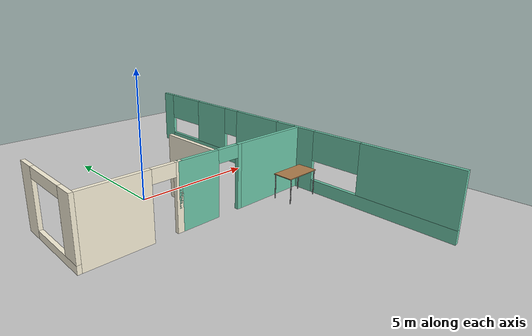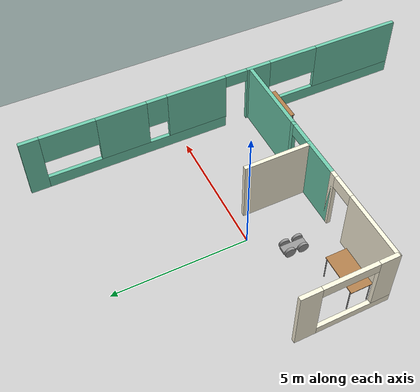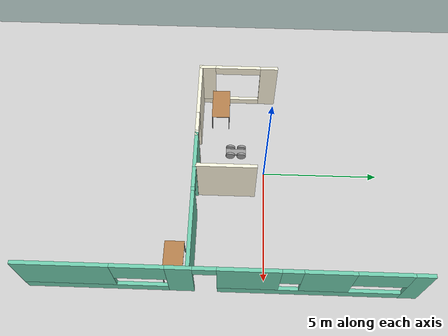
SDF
<sdf version="1.6">
 <world name="default">
  <model name="ground_plane">
   <static>1</static>
   <link name="link">
    <collision name="collision">
     <geometry><plane><normal>0 0 1</normal><size>100 100</size></plane></geometry>
     <surface><friction><ode><mu>100</mu><mu2>50</mu2></ode></friction></surface>
    </collision>
    <visual name="visual">
     <cast_shadows>0</cast_shadows>
     <geometry><plane><normal>0 0 1</normal><size>100 100</size></plane></geometry>
     <material>
      <script><uri>file://media/materials/scripts/gazebo.material</uri><name>Gazebo/Grey</name></script>
     </material>
    </visual>
   </link>
  </model>
  <model name="Building">
   <pose>0.68406 -1.71329 0 0 -0 0</pose>
   <link name="Wall_36">
    <pose>4.73687 0.016508 0 0 0 -1.5708</pose>
    <visual name="Wall_36_Visual_0">
     <pose>-7.38566 0 1.25 0 -0 0</pose>
     <geometry><box><size>0.728677 0.15 2.5</size></box></geometry>
     <material>
      <script><uri>file://media/materials/scripts/gazebo.material</uri><name>Gazebo/Grey</name></script>
      <ambient>0.435294 0.796078 0.67451 1</ambient>
     </material>
     <meta><layer>0</layer></meta>
    </visual>
    <collision name="Wall_36_Collision_0">
     <geometry><box><size>0.728677 0.15 2.5</size></box></geometry>
     <pose>-7.38566 0 1.25 0 -0 0</pose>
    </collision>
    <visual name="Wall_36_Visual_1">
     <pose>1.57462 0 1.25 0 -0 0</pose>
     <geometry><box><size>1.00346 0.15 2.5</size></box></geometry>
     <material>
      <script><uri>file://media/materials/scripts/gazebo.material</uri><name>Gazebo/Grey</name></script>
      <ambient>0.435294 0.796078 0.67451 1</ambient>
     </material>
     <meta><layer>0</layer></meta>
    </visual>
    <collision name="Wall_36_Collision_1">
     <geometry><box><size>1.00346 0.15 2.5</size></box></geometry>
     <pose>1.57462 0 1.25 0 -0 0</pose>
    </collision>
    <visual name="Wall_36_Visual_2">
     <pose>-3.42421 0 0.25 0 -0 0</pose>
     <geometry><box><size>7.19422 0.15 0.5</size></box></geometry>
     <material>
      <script><uri>file://media/materials/scripts/gazebo.material</uri><name>Gazebo/Grey</name></script>
      <ambient>0.435294 0.796078 0.67451 1</ambient>
     </material>
     <meta><layer>0</layer></meta>
    </visual>
    <collision name="Wall_36_Collision_2">
     <geometry><box><size>7.19422 0.15 0.5</size></box></geometry>
     <pose>-3.42421 0 0.25 0 -0 0</pose>
    </collision>
    <visual name="Wall_36_Visual_3">
     <pose>4.91318 0 0.25 0 -0 0</pose>
     <geometry><box><size>5.67365 0.15 0.5</size></box></geometry>
     <material>
      <script><uri>file://media/materials/scripts/gazebo.material</uri><name>Gazebo/Grey</name></script>
      <ambient>0.435294 0.796078 0.67451 1</ambient>
     </material>
     <meta><layer>0</layer></meta>
    </visual>
    <collision name="Wall_36_Collision_3">
     <geometry><box><size>5.67365 0.15 0.5</size></box></geometry>
     <pose>4.91318 0 0.25 0 -0 0</pose>
    </collision>
    <visual name="Wall_36_Visual_4">
     <pose>-3.98224 0 1.5 0 -0 0</pose>
     <geometry><box><size>1.93682 0.15 2</size></box></geometry>
     <material>
      <script><uri>file://media/materials/scripts/gazebo.material</uri><name>Gazebo/Grey</name></script>
      <ambient>0.435294 0.796078 0.67451 1</ambient>
     </material>
     <meta><layer>0</layer></meta>
    </visual>
    <collision name="Wall_36_Collision_4">
     <geometry><box><size>1.93682 0.15 2</size></box></geometry>
     <pose>-3.98224 0 1.5 0 -0 0</pose>
    </collision>
    <visual name="Wall_36_Visual_5">
     <pose>-1.02047 0 1.5 0 -0 0</pose>
     <geometry><box><size>2.38673 0.15 2</size></box></geometry>
     <material>
      <script><uri>file://media/materials/scripts/gazebo.material</uri><name>Gazebo/Grey</name></script>
      <ambient>0.435294 0.796078 0.67451 1</ambient>
     </material>
     <meta><layer>0</layer></meta>
    </visual>
    <collision name="Wall_36_Collision_5">
     <geometry><box><size>2.38673 0.15 2</size></box></geometry>
     <pose>-1.02047 0 1.5 0 -0 0</pose>
    </collision>
    <visual name="Wall_36_Visual_6">
     <pose>-1.02047 0 1.5 0 -0 0</pose>
     <geometry><box><size>2.38673 0.15 2</size></box></geometry>
     <material>
      <script><uri>file://media/materials/scripts/gazebo.material</uri><name>Gazebo/Grey</name></script>
      <ambient>0.435294 0.796078 0.67451 1</ambient>
     </material>
     <meta><layer>0</layer></meta>
    </visual>
    <collision name="Wall_36_Collision_6">
     <geometry><box><size>2.38673 0.15 2</size></box></geometry>
     <pose>-1.02047 0 1.5 0 -0 0</pose>
    </collision>
    <visual name="Wall_36_Visual_7">
     <pose>5.92595 0 1.5 0 -0 0</pose>
     <geometry><box><size>3.64809 0.15 2</size></box></geometry>
     <material>
      <script><uri>file://media/materials/scripts/gazebo.material</uri><name>Gazebo/Grey</name></script>
      <ambient>0.435294 0.796078 0.67451 1</ambient>
     </material>
     <meta><layer>0</layer></meta>
    </visual>
    <collision name="Wall_36_Collision_7">
     <geometry><box><size>3.64809 0.15 2</size></box></geometry>
     <pose>5.92595 0 1.5 0 -0 0</pose>
    </collision>
    <visual name="Wall_36_Visual_8">
     <pose>-5.98599 0 1.9 0 -0 0</pose>
     <geometry><box><size>2.07067 0.15 1.2</size></box></geometry>
     <material>
      <script><uri>file://media/materials/scripts/gazebo.material</uri><name>Gazebo/Grey</name></script>
      <ambient>0.435294 0.796078 0.67451 1</ambient>
     </material>
     <meta><layer>0</layer></meta>
    </visual>
    <collision name="Wall_36_Collision_8">
     <geometry><box><size>2.07067 0.15 1.2</size></box></geometry>
     <pose>-5.98599 0 1.9 0 -0 0</pose>
    </collision>
    <visual name="Wall_36_Visual_9">
     <pose>3.08913 0 1.9 0 -0 0</pose>
     <geometry><box><size>2.02556 0.15 1.2</size></box></geometry>
     <material>
      <script><uri>file://media/materials/scripts/gazebo.material</uri><name>Gazebo/Grey</name></script>
      <ambient>0.435294 0.796078 0.67451 1</ambient>
     </material>
     <meta><layer>0</layer></meta>
    </visual>
    <collision name="Wall_36_Collision_9">
     <geometry><box><size>2.02556 0.15 1.2</size></box></geometry>
     <pose>3.08913 0 1.9 0 -0 0</pose>
    </collision>
    <visual name="Wall_36_Visual_10">
     <pose>-2.61383 0 1.9 0 -0 0</pose>
     <geometry><box><size>0.8 0.15 1.2</size></box></geometry>
     <material>
      <script><uri>file://media/materials/scripts/gazebo.material</uri><name>Gazebo/Grey</name></script>
      <ambient>0.435294 0.796078 0.67451 1</ambient>
     </material>
     <meta><layer>0</layer></meta>
    </visual>
    <collision name="Wall_36_Collision_10">
     <geometry><box><size>0.8 0.15 1.2</size></box></geometry>
     <pose>-2.61383 0 1.9 0 -0 0</pose>
    </collision>
    <visual name="Wall_36_Visual_11">
     <pose>0.622896 0 2.25 0 -0 0</pose>
     <geometry><box><size>0.9 0.15 0.5</size></box></geometry>
     <material>
      <script><uri>file://media/materials/scripts/gazebo.material</uri><name>Gazebo/Grey</name></script>
      <ambient>0.435294 0.796078 0.67451 1</ambient>
     </material>
     <meta><layer>0</layer></meta>
    </visual>
    <collision name="Wall_36_Collision_11">
     <geometry><box><size>0.9 0.15 0.5</size></box></geometry>
     <pose>0.622896 0 2.25 0 -0 0</pose>
    </collision>
    <visual name="Wall_36_Visual_12">
     <pose>0.622896 0 2.25 0 -0 0</pose>
     <geometry><box><size>0.9 0.15 0.5</size></box></geometry>
     <material>
      <script><uri>file://media/materials/scripts/gazebo.material</uri><name>Gazebo/Grey</name></script>
      <ambient>0.435294 0.796078 0.67451 1</ambient>
     </material>
     <meta><layer>0</layer></meta>
    </visual>
    <collision name="Wall_36_Collision_12">
     <geometry><box><size>0.9 0.15 0.5</size></box></geometry>
     <pose>0.622896 0 2.25 0 -0 0</pose>
    </collision>
   </link>
   <link name="Wall_45">
    <pose>-4.7058 0.456287 0 0 0 -1.5708</pose>
    <visual name="Wall_45_Visual_0">
     <pose>-1.36395 0 1.25 0 -0 0</pose>
     <geometry><box><size>0.772101 0.15 2.5</size></box></geometry>
     <material>
      <script><uri>file://media/materials/scripts/gazebo.material</uri><name>Gazebo/Grey</name></script>
      <ambient>1 0.968627 0.870588 1</ambient>
     </material>
     <meta><layer>0</layer></meta>
    </visual>
    <collision name="Wall_45_Collision_0">
     <geometry><box><size>0.772101 0.15 2.5</size></box></geometry>
     <pose>-1.36395 0 1.25 0 -0 0</pose>
    </collision>
    <visual name="Wall_45_Visual_1">
     <pose>0.386051 0 0.15 0 -0 0</pose>
     <geometry><box><size>2.7279 0.15 0.3</size></box></geometry>
     <material>
      <script><uri>file://media/materials/scripts/gazebo.material</uri><name>Gazebo/Grey</name></script>
      <ambient>1 0.968627 0.870588 1</ambient>
     </material>
     <meta><layer>0</layer></meta>
    </visual>
    <collision name="Wall_45_Collision_1">
     <geometry><box><size>2.7279 0.15 0.3</size></box></geometry>
     <pose>0.386051 0 0.15 0 -0 0</pose>
    </collision>
    <visual name="Wall_45_Visual_2">
     <pose>1.38605 0 1.4 0 -0 0</pose>
     <geometry><box><size>0.727899 0.15 2.2</size></box></geometry>
     <material>
      <script><uri>file://media/materials/scripts/gazebo.material</uri><name>Gazebo/Grey</name></script>
      <ambient>1 0.968627 0.870588 1</ambient>
     </material>
     <meta><layer>0</layer></meta>
    </visual>
    <collision name="Wall_45_Collision_2">
     <geometry><box><size>0.727899 0.15 2.2</size></box></geometry>
     <pose>1.38605 0 1.4 0 -0 0</pose>
    </collision>
    <visual name="Wall_45_Visual_3">
     <pose>0.022101 0 2.3 0 -0 0</pose>
     <geometry><box><size>2 0.15 0.4</size></box></geometry>
     <material>
      <script><uri>file://media/materials/scripts/gazebo.material</uri><name>Gazebo/Grey</name></script>
      <ambient>1 0.968627 0.870588 1</ambient>
     </material>
     <meta><layer>0</layer></meta>
    </visual>
    <collision name="Wall_45_Collision_3">
     <geometry><box><size>2 0.15 0.4</size></box></geometry>
     <pose>0.022101 0 2.3 0 -0 0</pose>
    </collision>
   </link>
   <link name="Wall_46">
    <pose>-2.9058 -1.21871 0 0 -0 0</pose>
    <visual name="Wall_46_Visual_0">
     <pose>-0.575011 0 1.25 0 -0 0</pose>
     <geometry><box><size>2.59998 0.15 2.5</size></box></geometry>
     <material>
      <script><uri>file://media/materials/scripts/gazebo.material</uri><name>Gazebo/Grey</name></script>
      <ambient>1 0.968627 0.870588 1</ambient>
     </material>
     <meta><layer>0</layer></meta>
    </visual>
    <collision name="Wall_46_Collision_0">
     <geometry><box><size>2.59998 0.15 2.5</size></box></geometry>
     <pose>-0.575011 0 1.25 0 -0 0</pose>
    </collision>
    <visual name="Wall_46_Visual_1">
     <pose>1.74999 0 1.25 0 -0 0</pose>
     <geometry><box><size>0.250022 0.15 2.5</size></box></geometry>
     <material>
      <script><uri>file://media/materials/scripts/gazebo.material</uri><name>Gazebo/Grey</name></script>
      <ambient>1 0.968627 0.870588 1</ambient>
     </material>
     <meta><layer>0</layer></meta>
    </visual>
    <collision name="Wall_46_Collision_1">
     <geometry><box><size>0.250022 0.15 2.5</size></box></geometry>
     <pose>1.74999 0 1.25 0 -0 0</pose>
    </collision>
    <visual name="Wall_46_Visual_2">
     <pose>1.17498 0 2.25 0 -0 0</pose>
     <geometry><box><size>0.9 0.15 0.5</size></box></geometry>
     <material>
      <script><uri>file://media/materials/scripts/gazebo.material</uri><name>Gazebo/Grey</name></script>
      <ambient>1 0.968627 0.870588 1</ambient>
     </material>
     <meta><layer>0</layer></meta>
    </visual>
    <collision name="Wall_46_Collision_2">
     <geometry><box><size>0.9 0.15 0.5</size></box></geometry>
     <pose>1.17498 0 2.25 0 -0 0</pose>
    </collision>
   </link>
   <link name="Wall_52">
    <collision name="Wall_52_Collision">
     <geometry><box><size>2.5 0.15 2.5</size></box></geometry>
     <pose>0 0 1.25 0 -0 0</pose>
    </collision>
    <visual name="Wall_52_Visual">
     <pose>0 0 1.25 0 -0 0</pose>
     <geometry><box><size>2.5 0.15 2.5</size></box></geometry>
     <material>
      <script><uri>file://media/materials/scripts/gazebo.material</uri><name>Gazebo/Grey</name></script>
      <ambient>1 0.968627 0.870588 1</ambient>
     </material>
     <meta><layer>0</layer></meta>
    </visual>
    <pose>0.386867 0.066508 0 0 0 -1.5708</pose>
   </link>
   <link name="Wall_74">
    <pose>0.194198 -1.21871 0 0 -0 0</pose>
    <visual name="Wall_74_Visual_0">
     <pose>-0.535011 0 1.25 0 -0 0</pose>
     <geometry><box><size>1.67998 0.15 2.5</size></box></geometry>
     <material>
      <script><uri>file://media/materials/scripts/gazebo.material</uri><name>Gazebo/Grey</name></script>
      <ambient>0.435294 0.796078 0.67451 1</ambient>
     </material>
     <meta><layer>0</layer></meta>
    </visual>
    <collision name="Wall_74_Collision_0">
     <geometry><box><size>1.67998 0.15 2.5</size></box></geometry>
     <pose>-0.535011 0 1.25 0 -0 0</pose>
    </collision>
    <visual name="Wall_74_Visual_1">
     <pose>1.28999 0 1.25 0 -0 0</pose>
     <geometry><box><size>0.170021 0.15 2.5</size></box></geometry>
     <material>
      <script><uri>file://media/materials/scripts/gazebo.material</uri><name>Gazebo/Grey</name></script>
      <ambient>0.435294 0.796078 0.67451 1</ambient>
     </material>
     <meta><layer>0</layer></meta>
    </visual>
    <collision name="Wall_74_Collision_1">
     <geometry><box><size>0.170021 0.15 2.5</size></box></geometry>
     <pose>1.28999 0 1.25 0 -0 0</pose>
    </collision>
    <visual name="Wall_74_Visual_2">
     <pose>0.754979 0 2.25 0 -0 0</pose>
     <geometry><box><size>0.9 0.15 0.5</size></box></geometry>
     <material>
      <script><uri>file://media/materials/scripts/gazebo.material</uri><name>Gazebo/Grey</name></script>
      <ambient>0.435294 0.796078 0.67451 1</ambient>
     </material>
     <meta><layer>0</layer></meta>
    </visual>
    <collision name="Wall_74_Collision_2">
     <geometry><box><size>0.9 0.15 0.5</size></box></geometry>
     <pose>0.754979 0 2.25 0 -0 0</pose>
    </collision>
   </link>
   <link name="Wall_82">
    <collision name="Wall_82_Collision">
     <geometry><box><size>3.25 0.15 2.5</size></box></geometry>
     <pose>0 0 1.25 0 -0 0</pose>
    </collision>
    <visual name="Wall_82_Visual">
     <pose>0 0 1.25 0 -0 0</pose>
     <geometry><box><size>3.25 0.15 2.5</size></box></geometry>
     <material>
      <script><uri>file://media/materials/scripts/gazebo.material</uri><name>Gazebo/Grey</name></script>
      <ambient>0.435294 0.796078 0.67451 1</ambient>
     </material>
     <meta><layer>0</layer></meta>
    </visual>
    <pose>3.0442 -1.21871 0 0 -0 0</pose>
   </link>
   <static>1</static>
  </model>
  <model name="table_1">
   <static>1</static>
   <link name="link">
    <collision name="surface">
     <pose>0 0 1 0 -0 0</pose>
     <geometry><box><size>1.5 0.8 0.03</size></box></geometry>
     <surface><friction><ode><mu>0.6</mu><mu2>0.6</mu2></ode></friction></surface>
    </collision>
    <visual name="visual1">
     <pose>0 0 1 0 -0 0</pose>
     <geometry><box><size>1.5 0.8 0.03</size></box></geometry>
     <material>
      <script><uri>file://media/materials/scripts/gazebo.material</uri><name>Gazebo/Wood</name></script>
     </material>
    </visual>
    <collision name="front_left_leg">
     <pose>0.68 0.38 0.5 0 -0 0</pose>
     <geometry><cylinder><radius>0.02</radius><length>1</length></cylinder></geometry>
    </collision>
    <visual name="front_left_leg">
     <pose>0.68 0.38 0.5 0 -0 0</pose>
     <geometry><cylinder><radius>0.02</radius><length>1</length></cylinder></geometry>
     <material>
      <script><uri>file://media/materials/scripts/gazebo.material</uri><name>Gazebo/Grey</name></script>
     </material>
    </visual>
    <collision name="front_right_leg">
     <pose>0.68 -0.38 0.5 0 -0 0</pose>
     <geometry><cylinder><radius>0.02</radius><length>1</length></cylinder></geometry>
    </collision>
    <visual name="front_right_leg">
     <pose>0.68 -0.38 0.5 0 -0 0</pose>
     <geometry><cylinder><radius>0.02</radius><length>1</length></cylinder></geometry>
     <material>
      <script><uri>file://media/materials/scripts/gazebo.material</uri><name>Gazebo/Grey</name></script>
     </material>
    </visual>
    <collision name="back_right_leg">
     <pose>-0.68 -0.38 0.5 0 -0 0</pose>
     <geometry><cylinder><radius>0.02</radius><length>1</length></cylinder></geometry>
    </collision>
    <visual name="back_right_leg">
     <pose>-0.68 -0.38 0.5 0 -0 0</pose>
     <geometry><cylinder><radius>0.02</radius><length>1</length></cylinder></geometry>
     <material>
      <script><uri>file://media/materials/scripts/gazebo.material</uri><name>Gazebo/Grey</name></script>
     </material>
    </visual>
    <collision name="back_left_leg">
     <pose>-0.68 0.38 0.5 0 -0 0</pose>
     <geometry><cylinder><radius>0.02</radius><length>1</length></cylinder></geometry>
    </collision>
    <visual name="back_left_leg">
     <pose>-0.68 0.38 0.5 0 -0 0</pose>
     <geometry><cylinder><radius>0.02</radius><length>1</length></cylinder></geometry>
     <material>
      <script><uri>file://media/materials/scripts/gazebo.material</uri><name>Gazebo/Grey</name></script>
     </material>
    </visual>
   </link>
   <pose>4.53215 -3.6298 0 0 -0 0</pose>
  </model>
  <model name="table_2">
   <static>1</static>
   <link name="link">
    <collision name="surface">
     <pose>0 0 1 0 -0 0</pose>
     <geometry><box><size>1.5 0.8 0.03</size></box></geometry>
     <surface><friction><ode><mu>0.6</mu><mu2>0.6</mu2></ode></friction></surface>
    </collision>
    <visual name="visual1">
     <pose>0 0 1 0 -0 0</pose>
     <geometry><box><size>1.5 0.8 0.03</size></box></geometry>
     <material>
      <script><uri>file://media/materials/scripts/gazebo.material</uri><name>Gazebo/Wood</name></script>
     </material>
    </visual>
    <collision name="front_left_leg">
     <pose>0.68 0.38 0.5 0 -0 0</pose>
     <geometry><cylinder><radius>0.02</radius><length>1</length></cylinder></geometry>
    </collision>
    <visual name="front_left_leg">
     <pose>0.68 0.38 0.5 0 -0 0</pose>
     <geometry><cylinder><radius>0.02</radius><length>1</length></cylinder></geometry>
     <material>
      <script><uri>file://media/materials/scripts/gazebo.material</uri><name>Gazebo/Grey</name></script>
     </material>
    </visual>
    <collision name="front_right_leg">
     <pose>0.68 -0.38 0.5 0 -0 0</pose>
     <geometry><cylinder><radius>0.02</radius><length>1</length></cylinder></geometry>
    </collision>
    <visual name="front_right_leg">
     <pose>0.68 -0.38 0.5 0 -0 0</pose>
     <geometry><cylinder><radius>0.02</radius><length>1</length></cylinder></geometry>
     <material>
      <script><uri>file://media/materials/scripts/gazebo.material</uri><name>Gazebo/Grey</name></script>
     </material>
    </visual>
    <collision name="back_right_leg">
     <pose>-0.68 -0.38 0.5 0 -0 0</pose>
     <geometry><cylinder><radius>0.02</radius><length>1</length></cylinder></geometry>
    </collision>
    <visual name="back_right_leg">
     <pose>-0.68 -0.38 0.5 0 -0 0</pose>
     <geometry><cylinder><radius>0.02</radius><length>1</length></cylinder></geometry>
     <material>
      <script><uri>file://media/materials/scripts/gazebo.material</uri><name>Gazebo/Grey</name></script>
     </material>
    </visual>
    <collision name="back_left_leg">
     <pose>-0.68 0.38 0.5 0 -0 0</pose>
     <geometry><cylinder><radius>0.02</radius><length>1</length></cylinder></geometry>
    </collision>
    <visual name="back_left_leg">
     <pose>-0.68 0.38 0.5 0 -0 0</pose>
     <geometry><cylinder><radius>0.02</radius><length>1</length></cylinder></geometry>
     <material>
      <script><uri>file://media/materials/scripts/gazebo.material</uri><name>Gazebo/Grey</name></script>
     </material>
    </visual>
   </link>
   <pose>-3.10313 -2.00746 0 0 -0 0</pose>
  </model>
  <model name="4WheelUGV">
   <link name="link_1">
    <inertial>
     <mass>1</mass>
     <inertia>
      <ixx>0.166667</ixx>
      <ixy>0</ixy>
      <ixz>0</ixz>
      <iyy>0.166667</iyy>
      <iyz>0</iyz>
      <izz>0.166667</izz>
     </inertia>
    </inertial>
    <pose>0 0 -0.035999 0 -0 0</pose>
    <visual name="visual">
     <geometry><box><size>0.3 0.9 0.1</size></box></geometry>
     <material>
      <lighting>1</lighting>
      <script><uri>file://media/materials/scripts/gazebo.material</uri><name>Gazebo/Grey</name></script>
      <shader type="pixel"><normal_map>__default__</normal_map></shader>
      <ambient>0.3 0.3 0.3 1</ambient>
      <diffuse>0.7 0.7 0.7 1</diffuse>
      <specular>0.01 0.01 0.01 1</specular>
      <emissive>0 0 0 1</emissive>
     </material>
    </visual>
    <collision name="collision">
     <geometry><box><size>0.3 0.9 0.1</size></box></geometry>
     <surface>
      <friction>
       <ode><mu>1</mu><mu2>1</mu2><fdir1>0 0 0</fdir1><slip1>0</slip1><slip2>0</slip2></ode>
       <torsional>
        <coefficient>1</coefficient>
        <patch_radius>0</patch_radius>
        <surface_radius>0</surface_radius>
        <use_patch_radius>1</use_patch_radius>
        <ode><slip>0</slip></ode>
       </torsional>
      </friction>
      <bounce><restitution_coefficient>0</restitution_coefficient><threshold>1e+06</threshold></bounce>
      <contact>
       <collide_without_contact>0</collide_without_contact>
       <collide_without_contact_bitmask>1</collide_without_contact_bitmask>
       <collide_bitmask>1</collide_bitmask>
       <ode>
        <soft_cfm>0</soft_cfm>
        <soft_erp>0.2</soft_erp>
        <kp>1e+13</kp>
        <kd>1</kd>
        <max_vel>0.01</max_vel>
        <min_depth>0</min_depth>
       </ode>
       <bullet>
        <split_impulse>1</split_impulse>
        <split_impulse_penetration_threshold>-0.01</split_impulse_penetration_threshold>
        <soft_cfm>0</soft_cfm>
        <soft_erp>0.2</soft_erp>
        <kp>1e+13</kp>
        <kd>1</kd>
       </bullet>
      </contact>
     </surface>
    </collision>
   </link>
   <link name="link_2">
    <inertial>
     <mass>1</mass>
     <inertia><ixx>0.145833</ixx><ixy>0</ixy><ixz>0</ixz><iyy>0.145833</iyy><iyz>0</iyz><izz>0.125</izz></inertia>
     <pose>0.02 0 0 0 -0 0</pose>
    </inertial>
    <pose>0.200039 0.249995 0.008996 1.5707 0 1.5707</pose>
    <visual name="visual">
     <geometry><cylinder><radius>0.2</radius><length>0.1</length></cylinder></geometry>
     <material>
      <lighting>1</lighting>
      <script><uri>file://media/materials/scripts/gazebo.material</uri><name>Gazebo/Grey</name></script>
      <shader type="pixel"><normal_map>__default__</normal_map></shader>
      <ambient>0.3 0.3 0.3 1</ambient>
      <diffuse>0.7 0.7 0.7 1</diffuse>
      <specular>0.01 0.01 0.01 1</specular>
      <emissive>0 0 0 1</emissive>
     </material>
    </visual>
    <collision name="collision">
     <geometry><cylinder><radius>0.2</radius><length>0.1</length></cylinder></geometry>
     <surface>
      <friction>
       <ode><mu>1</mu><mu2>1</mu2><fdir1>0 0 0</fdir1><slip1>0</slip1><slip2>0</slip2></ode>
       <torsional>
        <coefficient>1</coefficient>
        <patch_radius>0</patch_radius>
        <surface_radius>0</surface_radius>
        <use_patch_radius>1</use_patch_radius>
        <ode><slip>0</slip></ode>
       </torsional>
      </friction>
      <bounce><restitution_coefficient>0</restitution_coefficient><threshold>1e+06</threshold></bounce>
      <contact>
       <collide_without_contact>0</collide_without_contact>
       <collide_without_contact_bitmask>1</collide_without_contact_bitmask>
       <collide_bitmask>1</collide_bitmask>
       <ode>
        <soft_cfm>0</soft_cfm>
        <soft_erp>0.2</soft_erp>
        <kp>1e+13</kp>
        <kd>1</kd>
        <max_vel>0.01</max_vel>
        <min_depth>0</min_depth>
       </ode>
       <bullet>
        <split_impulse>1</split_impulse>
        <split_impulse_penetration_threshold>-0.01</split_impulse_penetration_threshold>
        <soft_cfm>0</soft_cfm>
        <soft_erp>0.2</soft_erp>
        <kp>1e+13</kp>
        <kd>1</kd>
       </bullet>
      </contact>
     </surface>
    </collision>
   </link>
   <link name="link_2_clone">
    <inertial>
     <mass>1</mass>
     <inertia><ixx>0.145833</ixx><ixy>0</ixy><ixz>0</ixz><iyy>0.145833</iyy><iyz>0</iyz><izz>0.125</izz></inertia>
     <pose>0.02 0 0 0 -0 0</pose>
    </inertial>
    <pose>-0.200039 0.249995 0.009001 1.5707 0 1.5707</pose>
    <visual name="visual">
     <geometry><cylinder><radius>0.2</radius><length>0.1</length></cylinder></geometry>
     <material>
      <lighting>1</lighting>
      <script><uri>file://media/materials/scripts/gazebo.material</uri><name>Gazebo/Grey</name></script>
      <shader type="pixel"><normal_map>__default__</normal_map></shader>
      <ambient>0.3 0.3 0.3 1</ambient>
      <diffuse>0.7 0.7 0.7 1</diffuse>
      <specular>0.01 0.01 0.01 1</specular>
      <emissive>0 0 0 1</emissive>
     </material>
    </visual>
    <collision name="collision">
     <geometry><cylinder><radius>0.2</radius><length>0.1</length></cylinder></geometry>
     <surface>
      <friction>
       <ode><mu>1</mu><mu2>1</mu2><fdir1>0 0 0</fdir1><slip1>0</slip1><slip2>0</slip2></ode>
       <torsional>
        <coefficient>1</coefficient>
        <patch_radius>0</patch_radius>
        <surface_radius>0</surface_radius>
        <use_patch_radius>1</use_patch_radius>
        <ode><slip>0</slip></ode>
       </torsional>
      </friction>
      <bounce><restitution_coefficient>0</restitution_coefficient><threshold>1e+06</threshold></bounce>
      <contact>
       <collide_without_contact>0</collide_without_contact>
       <collide_without_contact_bitmask>1</collide_without_contact_bitmask>
       <collide_bitmask>1</collide_bitmask>
       <ode>
        <soft_cfm>0</soft_cfm>
        <soft_erp>0.2</soft_erp>
        <kp>1e+13</kp>
        <kd>1</kd>
        <max_vel>0.01</max_vel>
        <min_depth>0</min_depth>
       </ode>
       <bullet>
        <split_impulse>1</split_impulse>
        <split_impulse_penetration_threshold>-0.01</split_impulse_penetration_threshold>
        <soft_cfm>0</soft_cfm>
        <soft_erp>0.2</soft_erp>
        <kp>1e+13</kp>
        <kd>1</kd>
       </bullet>
      </contact>
     </surface>
    </collision>
   </link>
   <link name="link_2_clone_0">
    <inertial>
     <mass>1</mass>
     <inertia><ixx>0.145833</ixx><ixy>0</ixy><ixz>0</ixz><iyy>0.145833</iyy><iyz>0</iyz><izz>0.125</izz></inertia>
     <pose>0.02 0 0 0 -0 0</pose>
    </inertial>
    <pose>-0.200039 -0.249995 0.009001 1.5707 0 1.5707</pose>
    <visual name="visual">
     <geometry><cylinder><radius>0.2</radius><length>0.1</length></cylinder></geometry>
     <material>
      <lighting>1</lighting>
      <script><uri>file://media/materials/scripts/gazebo.material</uri><name>Gazebo/Grey</name></script>
      <shader type="pixel"><normal_map>__default__</normal_map></shader>
      <ambient>0.3 0.3 0.3 1</ambient>
      <diffuse>0.7 0.7 0.7 1</diffuse>
      <specular>0.01 0.01 0.01 1</specular>
      <emissive>0 0 0 1</emissive>
     </material>
    </visual>
    <collision name="collision">
     <geometry><cylinder><radius>0.2</radius><length>0.1</length></cylinder></geometry>
     <surface>
      <friction>
       <ode><mu>1</mu><mu2>1</mu2><fdir1>0 0 0</fdir1><slip1>0</slip1><slip2>0</slip2></ode>
       <torsional>
        <coefficient>1</coefficient>
        <patch_radius>0</patch_radius>
        <surface_radius>0</surface_radius>
        <use_patch_radius>1</use_patch_radius>
        <ode><slip>0</slip></ode>
       </torsional>
      </friction>
      <bounce><restitution_coefficient>0</restitution_coefficient><threshold>1e+06</threshold></bounce>
      <contact>
       <collide_without_contact>0</collide_without_contact>
       <collide_without_contact_bitmask>1</collide_without_contact_bitmask>
       <collide_bitmask>1</collide_bitmask>
       <ode>
        <soft_cfm>0</soft_cfm>
        <soft_erp>0.2</soft_erp>
        <kp>1e+13</kp>
        <kd>1</kd>
        <max_vel>0.01</max_vel>
        <min_depth>0</min_depth>
       </ode>
       <bullet>
        <split_impulse>1</split_impulse>
        <split_impulse_penetration_threshold>-0.01</split_impulse_penetration_threshold>
        <soft_cfm>0</soft_cfm>
        <soft_erp>0.2</soft_erp>
        <kp>1e+13</kp>
        <kd>1</kd>
       </bullet>
      </contact>
     </surface>
    </collision>
   </link>
   <link name="link_2_clone_1">
    <inertial>
     <mass>1</mass>
     <inertia><ixx>0.145833</ixx><ixy>0</ixy><ixz>0</ixz><iyy>0.145833</iyy><iyz>0</iyz><izz>0.125</izz></inertia>
     <pose>0.02 0 0 0 -0 0</pose>
    </inertial>
    <pose>0.200039 -0.249995 0.009001 1.5707 0 1.5707</pose>
    <visual name="visual">
     <geometry><cylinder><radius>0.2</radius><length>0.1</length></cylinder></geometry>
     <material>
      <lighting>1</lighting>
      <script><uri>file://media/materials/scripts/gazebo.material</uri><name>Gazebo/Grey</name></script>
      <shader type="pixel"><normal_map>__default__</normal_map></shader>
      <ambient>0.3 0.3 0.3 1</ambient>
      <diffuse>0.7 0.7 0.7 1</diffuse>
      <specular>0.01 0.01 0.01 1</specular>
      <emissive>0 0 0 1</emissive>
     </material>
    </visual>
    <collision name="collision">
     <geometry><cylinder><radius>0.2</radius><length>0.1</length></cylinder></geometry>
     <surface>
      <friction>
       <ode><mu>1</mu><mu2>1</mu2><fdir1>0 0 0</fdir1><slip1>0</slip1><slip2>0</slip2></ode>
       <torsional>
        <coefficient>1</coefficient>
        <patch_radius>0</patch_radius>
        <surface_radius>0</surface_radius>
        <use_patch_radius>1</use_patch_radius>
        <ode><slip>0</slip></ode>
       </torsional>
      </friction>
      <bounce><restitution_coefficient>0</restitution_coefficient><threshold>1e+06</threshold></bounce>
      <contact>
       <collide_without_contact>0</collide_without_contact>
       <collide_without_contact_bitmask>1</collide_without_contact_bitmask>
       <collide_bitmask>1</collide_bitmask>
       <ode>
        <soft_cfm>0</soft_cfm>
        <soft_erp>0.2</soft_erp>
        <kp>1e+13</kp>
        <kd>1</kd>
        <max_vel>0.01</max_vel>
        <min_depth>0</min_depth>
       </ode>
       <bullet>
        <split_impulse>1</split_impulse>
        <split_impulse_penetration_threshold>-0.01</split_impulse_penetration_threshold>
        <soft_cfm>0</soft_cfm>
        <soft_erp>0.2</soft_erp>
        <kp>1e+13</kp>
        <kd>1</kd>
       </bullet>
      </contact>
     </surface>
    </collision>
   </link>
   <joint name="link_1_JOINT_0" type="revolute">
    <parent>link_1</parent>
    <child>link_2_clone_0</child>
    <axis>
     <xyz>1 0 0</xyz>
     <use_parent_model_frame>0</use_parent_model_frame>
     <limit>
      <lower>-1.79769e+308</lower>
      <upper>1.79769e+308</upper>
      <effort>-1</effort>
      <velocity>-1</velocity>
     </limit>
     <dynamics>
      <spring_reference>0</spring_reference>
      <spring_stiffness>0</spring_stiffness>
      <damping>0</damping>
     </dynamics>
    </axis>
    <physics>
     <ode><limit><cfm>0</cfm><erp>0.2</erp></limit><suspension><cfm>0</cfm><erp>0.2</erp></suspension></ode>
    </physics>
   </joint>
   <joint name="link_1_JOINT_1" type="revolute">
    <parent>link_1</parent>
    <child>link_2_clone_1</child>
    <axis>
     <xyz>1 0 0</xyz>
     <use_parent_model_frame>0</use_parent_model_frame>
     <limit>
      <lower>-1.79769e+308</lower>
      <upper>1.79769e+308</upper>
      <effort>-1</effort>
      <velocity>-1</velocity>
     </limit>
     <dynamics>
      <spring_reference>0</spring_reference>
      <spring_stiffness>0</spring_stiffness>
      <damping>0</damping>
     </dynamics>
    </axis>
    <physics>
     <ode><limit><cfm>0</cfm><erp>0.2</erp></limit><suspension><cfm>0</cfm><erp>0.2</erp></suspension></ode>
    </physics>
   </joint>
   <joint name="link_1_JOINT_2" type="revolute">
    <parent>link_1</parent>
    <child>link_2</child>
    <axis>
     <xyz>1 0 0</xyz>
     <use_parent_model_frame>0</use_parent_model_frame>
     <limit>
      <lower>-1.79769e+308</lower>
      <upper>1.79769e+308</upper>
      <effort>-1</effort>
      <velocity>-1</velocity>
     </limit>
     <dynamics>
      <spring_reference>0</spring_reference>
      <spring_stiffness>0</spring_stiffness>
      <damping>0</damping>
     </dynamics>
    </axis>
    <physics>
     <ode><limit><cfm>0</cfm><erp>0.2</erp></limit><suspension><cfm>0</cfm><erp>0.2</erp></suspension></ode>
    </physics>
   </joint>
   <joint name="link_1_JOINT_3" type="revolute">
    <parent>link_1</parent>
    <child>link_2_clone</child>
    <axis>
     <xyz>1 0 0</xyz>
     <use_parent_model_frame>0</use_parent_model_frame>
     <limit>
      <lower>-1.79769e+308</lower>
      <upper>1.79769e+308</upper>
      <effort>-1</effort>
      <velocity>-1</velocity>
     </limit>
     <dynamics>
      <spring_reference>0</spring_reference>
      <spring_stiffness>0</spring_stiffness>
      <damping>0</damping>
     </dynamics>
    </axis>
    <physics>
     <ode><limit><cfm>0</cfm><erp>0.2</erp></limit><suspension><cfm>0</cfm><erp>0.2</erp></suspension></ode>
    </physics>
   </joint>
   <static>0</static>
   <pose>-1.01563 -1.26624 0.191001 1e-05 -4e-06 -0.009739</pose>
  </model>
 </world>
</sdf>
